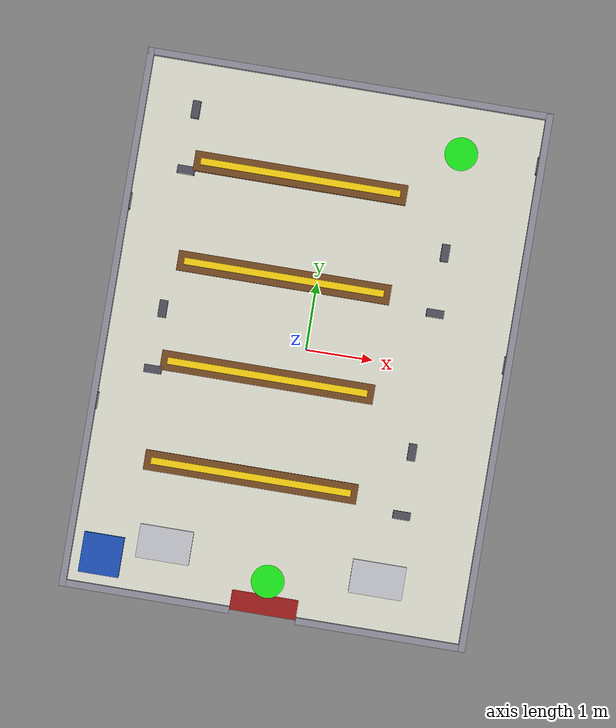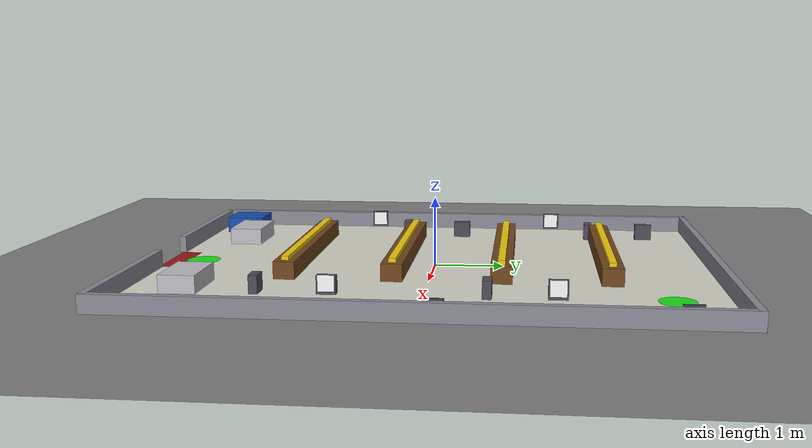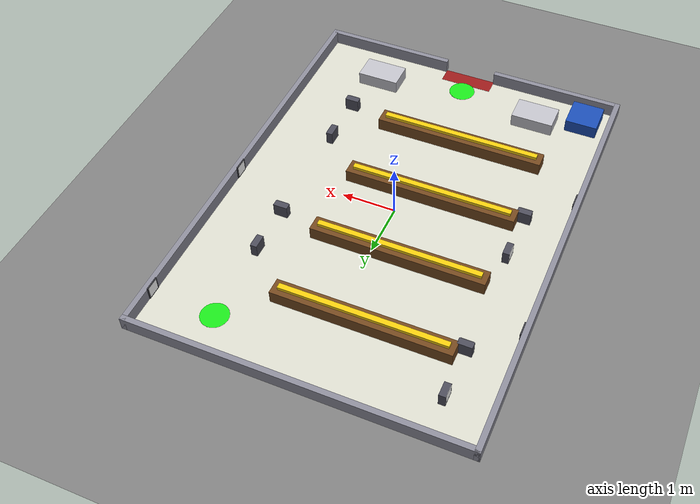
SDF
<?xml version="1.0" ?>
<sdf version="1.9">
  <world name="supermarket_arena">

    <physics name="1ms" type="ignored">
      <max_step_size>0.001</max_step_size>
      <real_time_factor>1.0</real_time_factor>
    </physics>

    <plugin filename="gz-sim-physics-system" name="gz::sim::systems::Physics"></plugin>
    <plugin filename="gz-sim-scene-broadcaster-system" name="gz::sim::systems::SceneBroadcaster"></plugin>
    <plugin filename="gz-sim-user-commands-system" name="gz::sim::systems::UserCommands"></plugin>
    <plugin filename="gz-sim-sensors-system" name="gz::sim::systems::Sensors">
      <render_engine>ogre2</render_engine>
    </plugin>

    <light type="directional" name="sun">
      <cast_shadows>true</cast_shadows>
      <pose>0 0 10 0 0 0</pose>
      <diffuse>0.9 0.9 0.9 1</diffuse>
      <specular>0.2 0.2 0.2 1</specular>
      <direction>-0.5 0.1 -0.9</direction>
    </light>

    <model name="ground_plane">
      <static>true</static>
      <link name="link">
        <collision name="collision">
          <geometry><plane><normal>0 0 1</normal><size>100 100</size></plane></geometry>
        </collision>
        <visual name="visual">
          <geometry><plane><normal>0 0 1</normal><size>100 100</size></plane></geometry>
          <material><ambient>0.5 0.5 0.5 1</ambient><diffuse>0.5 0.5 0.5 1</diffuse></material>
        </visual>
      </link>
    </model>

    <!-- STORE FLOOR : light tile-colored floor sized to the arena      -->
    <model name="store_floor">
      <static>true</static>
      <pose>0 0 0.001 0 0 0</pose>
      <link name="link">
        <visual name="visual">
          <geometry><box><size>6 8 0.001</size></box></geometry>
          <material><ambient>0.85 0.85 0.8 1</ambient><diffuse>0.85 0.85 0.8 1</diffuse></material>
        </visual>
      </link>
    </model>

    <!-- Entrance mat, marks the doorway on the south wall -->
    <model name="entrance_mat">
      <static>true</static>
      <pose>0 -3.85 0.002 0 0 0</pose>
      <link name="link">
        <visual name="visual">
          <geometry><box><size>1.0 0.3 0.001</size></box></geometry>
          <material><ambient>0.6 0.1 0.1 1</ambient><diffuse>0.6 0.1 0.1 1</diffuse></material>
        </visual>
      </link>
    </model>

    <!-- SQUARE(ish) BOUNDARY WALLS : 6m x 8m footprint, 250mm tall     -->
    <!-- with a 1m entrance gap in the south wall                       -->
    <model name="arena_walls">
      <static>true</static>
      <pose>0 0 0 0 0 0</pose>

      <link name="wall_north">
        <pose>0 4 0.125 0 0 0</pose>
        <collision name="collision"><geometry><box><size>6.1 0.1 0.25</size></box></geometry></collision>
        <visual name="visual">
          <geometry><box><size>6.1 0.1 0.25</size></box></geometry>
          <material><ambient>0.55 0.55 0.6 1</ambient><diffuse>0.55 0.55 0.6 1</diffuse></material>
        </visual>
      </link>

      <link name="wall_south_west">
        <pose>-1.75 -4 0.125 0 0 0</pose>
        <collision name="collision"><geometry><box><size>2.5 0.1 0.25</size></box></geometry></collision>
        <visual name="visual">
          <geometry><box><size>2.5 0.1 0.25</size></box></geometry>
          <material><ambient>0.55 0.55 0.6 1</ambient><diffuse>0.55 0.55 0.6 1</diffuse></material>
        </visual>
      </link>

      <link name="wall_south_east">
        <pose>1.75 -4 0.125 0 0 0</pose>
        <collision name="collision"><geometry><box><size>2.5 0.1 0.25</size></box></geometry></collision>
        <visual name="visual">
          <geometry><box><size>2.5 0.1 0.25</size></box></geometry>
          <material><ambient>0.55 0.55 0.6 1</ambient><diffuse>0.55 0.55 0.6 1</diffuse></material>
        </visual>
      </link>

      <link name="wall_east">
        <pose>3 0 0.125 0 0 0</pose>
        <collision name="collision"><geometry><box><size>0.1 8.1 0.25</size></box></geometry></collision>
        <visual name="visual">
          <geometry><box><size>0.1 8.1 0.25</size></box></geometry>
          <material><ambient>0.55 0.55 0.6 1</ambient><diffuse>0.55 0.55 0.6 1</diffuse></material>
        </visual>
      </link>

      <link name="wall_west">
        <pose>-3 0 0.125 0 0 0</pose>
        <collision name="collision"><geometry><box><size>0.1 8.1 0.25</size></box></geometry></collision>
        <visual name="visual">
          <geometry><box><size>0.1 8.1 0.25</size></box></geometry>
          <material><ambient>0.55 0.55 0.6 1</ambient><diffuse>0.55 0.55 0.6 1</diffuse></material>
        </visual>
      </link>
    </model>

    <!-- AISLE SHELVING : 4 rows, brown shelf color, with a yellow      -->
    <!-- hanging aisle sign above each row + aisle numbers via color    -->
    <!-- Rows run north-south walkway on the far right (cross-aisle)    -->

    <model name="aisle_row_1">
      <static>true</static>
      <pose>-0.5 2.5 0.125 0 0 0</pose>
      <link name="link">
        <collision name="collision"><geometry><box><size>3.2 0.3 0.25</size></box></geometry></collision>
        <visual name="visual">
          <geometry><box><size>3.2 0.3 0.25</size></box></geometry>
          <material><ambient>0.45 0.28 0.12 1</ambient><diffuse>0.45 0.28 0.12 1</diffuse></material>
        </visual>
      </link>
    </model>
    <model name="aisle_sign_1">
      <static>true</static>
      <pose>-0.5 2.5 0.28 0 0 0</pose>
      <link name="link">
        <visual name="visual">
          <geometry><box><size>3.0 0.1 0.06</size></box></geometry>
          <material><ambient>0.95 0.8 0.05 1</ambient><diffuse>0.95 0.8 0.05 1</diffuse></material>
        </visual>
      </link>
    </model>

    <model name="aisle_row_2">
      <static>true</static>
      <pose>-0.5 1.0 0.125 0 0 0</pose>
      <link name="link">
        <collision name="collision"><geometry><box><size>3.2 0.3 0.25</size></box></geometry></collision>
        <visual name="visual">
          <geometry><box><size>3.2 0.3 0.25</size></box></geometry>
          <material><ambient>0.45 0.28 0.12 1</ambient><diffuse>0.45 0.28 0.12 1</diffuse></material>
        </visual>
      </link>
    </model>
    <model name="aisle_sign_2">
      <static>true</static>
      <pose>-0.5 1.0 0.28 0 0 0</pose>
      <link name="link">
        <visual name="visual">
          <geometry><box><size>3.0 0.1 0.06</size></box></geometry>
          <material><ambient>0.95 0.8 0.05 1</ambient><diffuse>0.95 0.8 0.05 1</diffuse></material>
        </visual>
      </link>
    </model>

    <model name="aisle_row_3">
      <static>true</static>
      <pose>-0.5 -0.5 0.125 0 0 0</pose>
      <link name="link">
        <collision name="collision"><geometry><box><size>3.2 0.3 0.25</size></box></geometry></collision>
        <visual name="visual">
          <geometry><box><size>3.2 0.3 0.25</size></box></geometry>
          <material><ambient>0.45 0.28 0.12 1</ambient><diffuse>0.45 0.28 0.12 1</diffuse></material>
        </visual>
      </link>
    </model>
    <model name="aisle_sign_3">
      <static>true</static>
      <pose>-0.5 -0.5 0.28 0 0 0</pose>
      <link name="link">
        <visual name="visual">
          <geometry><box><size>3.0 0.1 0.06</size></box></geometry>
          <material><ambient>0.95 0.8 0.05 1</ambient><diffuse>0.95 0.8 0.05 1</diffuse></material>
        </visual>
      </link>
    </model>

    <model name="aisle_row_4">
      <static>true</static>
      <pose>-0.5 -2.0 0.125 0 0 0</pose>
      <link name="link">
        <collision name="collision"><geometry><box><size>3.2 0.3 0.25</size></box></geometry></collision>
        <visual name="visual">
          <geometry><box><size>3.2 0.3 0.25</size></box></geometry>
          <material><ambient>0.45 0.28 0.12 1</ambient><diffuse>0.45 0.28 0.12 1</diffuse></material>
        </visual>
      </link>
    </model>
    <model name="aisle_sign_4">
      <static>true</static>
      <pose>-0.5 -2.0 0.28 0 0 0</pose>
      <link name="link">
        <visual name="visual">
          <geometry><box><size>3.0 0.1 0.06</size></box></geometry>
          <material><ambient>0.95 0.8 0.05 1</ambient><diffuse>0.95 0.8 0.05 1</diffuse></material>
        </visual>
      </link>
    </model>

    <!-- CHECKOUT COUNTERS : near the entrance, silver/gray             -->
    <model name="checkout_1">
      <static>true</static>
      <pose>-1.6 -3.2 0.125 0 0 0</pose>
      <link name="link">
        <collision name="collision"><geometry><box><size>0.8 0.5 0.25</size></box></geometry></collision>
        <visual name="visual">
          <geometry><box><size>0.8 0.5 0.25</size></box></geometry>
          <material><ambient>0.75 0.75 0.78 1</ambient><diffuse>0.75 0.75 0.78 1</diffuse></material>
        </visual>
      </link>
    </model>

    <model name="checkout_2">
      <static>true</static>
      <pose>1.6 -3.2 0.125 0 0 0</pose>
      <link name="link">
        <collision name="collision"><geometry><box><size>0.8 0.5 0.25</size></box></geometry></collision>
        <visual name="visual">
          <geometry><box><size>0.8 0.5 0.25</size></box></geometry>
          <material><ambient>0.75 0.75 0.78 1</ambient><diffuse>0.75 0.75 0.78 1</diffuse></material>
        </visual>
      </link>
    </model>

    <!-- TROLLEY / BASKET RETURN AREA : near the entrance, blue         -->
    <model name="trolley_area">
      <static>true</static>
      <pose>-2.5 -3.5 0.125 0 0 0</pose>
      <link name="link">
        <collision name="collision"><geometry><box><size>0.6 0.6 0.25</size></box></geometry></collision>
        <visual name="visual">
          <geometry><box><size>0.6 0.6 0.25</size></box></geometry>
          <material><ambient>0.1 0.3 0.7 1</ambient><diffuse>0.1 0.3 0.7 1</diffuse></material>
        </visual>
      </link>
    </model>

    <!-- START & GOAL MARKERS                                          -->
    <model name="start_marker">
      <static>true</static>
      <pose>0 -3.5 0.003 0 0 0</pose>
      <link name="link">
        <visual name="visual">
          <geometry><cylinder><radius>0.25</radius><length>0.002</length></cylinder></geometry>
          <material>
            <ambient>0.1 0.9 0.1 1</ambient>
            <diffuse>0.1 0.9 0.1 1</diffuse>
          </material>
        </visual>
      </link>
    </model>

    <model name="goal_marker">
      <static>true</static>
      <pose>1.8 3.25 0.003 0 0 0</pose>
      <link name="link">
        <visual name="visual">
          <geometry><cylinder><radius>0.25</radius><length>0.002</length></cylinder></geometry>
          <material>
            <ambient>0.1 0.9 0.1 1</ambient>
            <diffuse>0.1 0.9 0.1 1</diffuse>
          </material>
        </visual>
      </link>
    </model>

    <!-- ARUCO MARKERS (0 to 11) MOUNTED ON STANDS / PEDESTALS / WALLS  -->
    <!-- Marker 0: South Entrance Waypoint (Facing South on Pedestal Stand) -->
    <model name="aruco_marker_0">
      <static>true</static>
      <pose>1.8 -2.2 0 0 0 0</pose>
      <link name="link">
        <visual name="stand">
          <pose>0 0 0.125 0 0 0</pose>
          <geometry><box><size>0.26 0.12 0.25</size></box></geometry>
          <material><ambient>0.3 0.3 0.35 1</ambient><diffuse>0.3 0.3 0.35 1</diffuse></material>
        </visual>
        <visual name="marker_plate">
          <pose>0 -0.061 0.15 0 0 0</pose>
          <geometry><box><size>0.22 0.002 0.22</size></box></geometry>
          <material>
            <ambient>1 1 1 1</ambient><diffuse>1 1 1 1</diffuse>
            <pbr><metal><albedo_map>/home/arc_aiml/AutonomousBot_ws/src/assessment_launch/textures/marker_0.png</albedo_map></metal></pbr>
          </material>
        </visual>
      </link>
    </model>

    <!-- Marker 1: Aisle 4 Entrance Marker (Facing East on Pedestal Stand) -->
    <model name="aruco_marker_1">
      <static>true</static>
      <pose>1.8 -1.25 0 0 0 0</pose>
      <link name="link">
        <visual name="stand">
          <pose>0 0 0.125 0 0 0</pose>
          <geometry><box><size>0.12 0.26 0.25</size></box></geometry>
          <material><ambient>0.3 0.3 0.35 1</ambient><diffuse>0.3 0.3 0.35 1</diffuse></material>
        </visual>
        <visual name="marker_plate">
          <pose>0.061 0 0.15 0 0 -1.5708</pose>
          <geometry><box><size>0.22 0.002 0.22</size></box></geometry>
          <material>
            <ambient>1 1 1 1</ambient><diffuse>1 1 1 1</diffuse>
            <pbr><metal><albedo_map>/home/arc_aiml/AutonomousBot_ws/src/assessment_launch/textures/marker_1.png</albedo_map></metal></pbr>
          </material>
        </visual>
      </link>
    </model>

    <!-- Marker 2: Lane 3-4 Mid Corridor Guide (Facing East on West Wall Plaque) -->
    <model name="aruco_marker_2">
      <static>true</static>
      <pose>-2.94 -1.25 0 0 0 0</pose>
      <link name="link">
        <visual name="wall_plaque">
          <pose>0 0 0.15 0 0 0</pose>
          <geometry><box><size>0.02 0.26 0.26</size></box></geometry>
          <material><ambient>0.25 0.25 0.28 1</ambient><diffuse>0.25 0.25 0.28 1</diffuse></material>
        </visual>
        <visual name="marker_plate">
          <pose>0.011 0 0.15 0 0 -1.5708</pose>
          <geometry><box><size>0.22 0.002 0.22</size></box></geometry>
          <material>
            <ambient>1 1 1 1</ambient><diffuse>1 1 1 1</diffuse>
            <pbr><metal><albedo_map>/home/arc_aiml/AutonomousBot_ws/src/assessment_launch/textures/marker_2.png</albedo_map></metal></pbr>
          </material>
        </visual>
      </link>
    </model>

    <!-- Marker 3: West Aisle 4 Exit Marker (Facing South on Pedestal Stand) -->
    <model name="aruco_marker_3">
      <static>true</static>
      <pose>-2.2 -0.66 0 0 0 0</pose>
      <link name="link">
        <visual name="stand">
          <pose>0 0 0.125 0 0 0</pose>
          <geometry><box><size>0.26 0.12 0.25</size></box></geometry>
          <material><ambient>0.3 0.3 0.35 1</ambient><diffuse>0.3 0.3 0.35 1</diffuse></material>
        </visual>
        <visual name="marker_plate">
          <pose>0 -0.061 0.15 0 0 0</pose>
          <geometry><box><size>0.22 0.002 0.22</size></box></geometry>
          <material>
            <ambient>1 1 1 1</ambient><diffuse>1 1 1 1</diffuse>
            <pbr><metal><albedo_map>/home/arc_aiml/AutonomousBot_ws/src/assessment_launch/textures/marker_3.png</albedo_map></metal></pbr>
          </material>
        </visual>
      </link>
    </model>

    <!-- Marker 4: Aisle 3 West Entrance Marker (Facing West on Pedestal Stand) -->
    <model name="aruco_marker_4">
      <static>true</static>
      <pose>-2.2 0.25 0 0 0 0</pose>
      <link name="link">
        <visual name="stand">
          <pose>0 0 0.125 0 0 0</pose>
          <geometry><box><size>0.12 0.26 0.25</size></box></geometry>
          <material><ambient>0.3 0.3 0.35 1</ambient><diffuse>0.3 0.3 0.35 1</diffuse></material>
        </visual>
        <visual name="marker_plate">
          <pose>-0.061 0 0.15 0 0 1.5708</pose>
          <geometry><box><size>0.22 0.002 0.22</size></box></geometry>
          <material>
            <ambient>1 1 1 1</ambient><diffuse>1 1 1 1</diffuse>
            <pbr><metal><albedo_map>/home/arc_aiml/AutonomousBot_ws/src/assessment_launch/textures/marker_4.png</albedo_map></metal></pbr>
          </material>
        </visual>
      </link>
    </model>

    <!-- Marker 5: Lane 2-3 Mid Corridor Guide (Facing West on East Wall Plaque) -->
    <model name="aruco_marker_5">
      <static>true</static>
      <pose>2.94 0.25 0 0 0 0</pose>
      <link name="link">
        <visual name="wall_plaque">
          <pose>0 0 0.15 0 0 0</pose>
          <geometry><box><size>0.02 0.26 0.26</size></box></geometry>
          <material><ambient>0.25 0.25 0.28 1</ambient><diffuse>0.25 0.25 0.28 1</diffuse></material>
        </visual>
        <visual name="marker_plate">
          <pose>-0.011 0 0.15 0 0 1.5708</pose>
          <geometry><box><size>0.22 0.002 0.22</size></box></geometry>
          <material>
            <ambient>1 1 1 1</ambient><diffuse>1 1 1 1</diffuse>
            <pbr><metal><albedo_map>/home/arc_aiml/AutonomousBot_ws/src/assessment_launch/textures/marker_5.png</albedo_map></metal></pbr>
          </material>
        </visual>
      </link>
    </model>

    <!-- Marker 6: East Aisle 3 Exit Marker (Facing South on Pedestal Stand) -->
    <model name="aruco_marker_6">
      <static>true</static>
      <pose>1.8 0.84 0 0 0 0</pose>
      <link name="link">
        <visual name="stand">
          <pose>0 0 0.125 0 0 0</pose>
          <geometry><box><size>0.26 0.12 0.25</size></box></geometry>
          <material><ambient>0.3 0.3 0.35 1</ambient><diffuse>0.3 0.3 0.35 1</diffuse></material>
        </visual>
        <visual name="marker_plate">
          <pose>0 -0.061 0.15 0 0 0</pose>
          <geometry><box><size>0.22 0.002 0.22</size></box></geometry>
          <material>
            <ambient>1 1 1 1</ambient><diffuse>1 1 1 1</diffuse>
            <pbr><metal><albedo_map>/home/arc_aiml/AutonomousBot_ws/src/assessment_launch/textures/marker_6.png</albedo_map></metal></pbr>
          </material>
        </visual>
      </link>
    </model>

    <!-- Marker 7: Aisle 2 East Entrance Marker (Facing East on Pedestal Stand) -->
    <model name="aruco_marker_7">
      <static>true</static>
      <pose>1.8 1.75 0 0 0 0</pose>
      <link name="link">
        <visual name="stand">
          <pose>0 0 0.125 0 0 0</pose>
          <geometry><box><size>0.12 0.26 0.25</size></box></geometry>
          <material><ambient>0.3 0.3 0.35 1</ambient><diffuse>0.3 0.3 0.35 1</diffuse></material>
        </visual>
        <visual name="marker_plate">
          <pose>0.061 0 0.15 0 0 -1.5708</pose>
          <geometry><box><size>0.22 0.002 0.22</size></box></geometry>
          <material>
            <ambient>1 1 1 1</ambient><diffuse>1 1 1 1</diffuse>
            <pbr><metal><albedo_map>/home/arc_aiml/AutonomousBot_ws/src/assessment_launch/textures/marker_7.png</albedo_map></metal></pbr>
          </material>
        </visual>
      </link>
    </model>

    <!-- Marker 8: Lane 1-2 Mid Corridor Guide (Facing East on West Wall Plaque) -->
    <model name="aruco_marker_8">
      <static>true</static>
      <pose>-2.94 1.75 0 0 0 0</pose>
      <link name="link">
        <visual name="wall_plaque">
          <pose>0 0 0.15 0 0 0</pose>
          <geometry><box><size>0.02 0.26 0.26</size></box></geometry>
          <material><ambient>0.25 0.25 0.28 1</ambient><diffuse>0.25 0.25 0.28 1</diffuse></material>
        </visual>
        <visual name="marker_plate">
          <pose>0.011 0 0.15 0 0 -1.5708</pose>
          <geometry><box><size>0.22 0.002 0.22</size></box></geometry>
          <material>
            <ambient>1 1 1 1</ambient><diffuse>1 1 1 1</diffuse>
            <pbr><metal><albedo_map>/home/arc_aiml/AutonomousBot_ws/src/assessment_launch/textures/marker_8.png</albedo_map></metal></pbr>
          </material>
        </visual>
      </link>
    </model>

    <!-- Marker 9: West Aisle 2 Exit Marker (Facing South on Pedestal Stand) -->
    <model name="aruco_marker_9">
      <static>true</static>
      <pose>-2.2 2.34 0 0 0 0</pose>
      <link name="link">
        <visual name="stand">
          <pose>0 0 0.125 0 0 0</pose>
          <geometry><box><size>0.26 0.12 0.25</size></box></geometry>
          <material><ambient>0.3 0.3 0.35 1</ambient><diffuse>0.3 0.3 0.35 1</diffuse></material>
        </visual>
        <visual name="marker_plate">
          <pose>0 -0.061 0.15 0 0 0</pose>
          <geometry><box><size>0.22 0.002 0.22</size></box></geometry>
          <material>
            <ambient>1 1 1 1</ambient><diffuse>1 1 1 1</diffuse>
            <pbr><metal><albedo_map>/home/arc_aiml/AutonomousBot_ws/src/assessment_launch/textures/marker_9.png</albedo_map></metal></pbr>
          </material>
        </visual>
      </link>
    </model>

    <!-- Marker 10: North Corridor Entrance Marker (Facing West on Pedestal Stand) -->
    <model name="aruco_marker_10">
      <static>true</static>
      <pose>-2.2 3.25 0 0 0 0</pose>
      <link name="link">
        <visual name="stand">
          <pose>0 0 0.125 0 0 0</pose>
          <geometry><box><size>0.12 0.26 0.25</size></box></geometry>
          <material><ambient>0.3 0.3 0.35 1</ambient><diffuse>0.3 0.3 0.35 1</diffuse></material>
        </visual>
        <visual name="marker_plate">
          <pose>-0.061 0 0.15 0 0 1.5708</pose>
          <geometry><box><size>0.22 0.002 0.22</size></box></geometry>
          <material>
            <ambient>1 1 1 1</ambient><diffuse>1 1 1 1</diffuse>
            <pbr><metal><albedo_map>/home/arc_aiml/AutonomousBot_ws/src/assessment_launch/textures/marker_10.png</albedo_map></metal></pbr>
          </material>
        </visual>
      </link>
    </model>

    <!-- Marker 11: Final Destination Marker (Facing West on East Wall Plaque) -->
    <model name="aruco_marker_11">
      <static>true</static>
      <pose>2.94 3.25 0 0 0 0</pose>
      <link name="link">
        <visual name="wall_plaque">
          <pose>0 0 0.15 0 0 0</pose>
          <geometry><box><size>0.02 0.26 0.26</size></box></geometry>
          <material><ambient>0.25 0.25 0.28 1</ambient><diffuse>0.25 0.25 0.28 1</diffuse></material>
        </visual>
        <visual name="marker_plate">
          <pose>-0.011 0 0.15 0 0 1.5708</pose>
          <geometry><box><size>0.22 0.002 0.22</size></box></geometry>
          <material>
            <ambient>1 1 1 1</ambient><diffuse>1 1 1 1</diffuse>
            <pbr><metal><albedo_map>/home/arc_aiml/AutonomousBot_ws/src/assessment_launch/textures/marker_11.png</albedo_map></metal></pbr>
          </material>
        </visual>
      </link>
    </model>

  </world>
</sdf>
